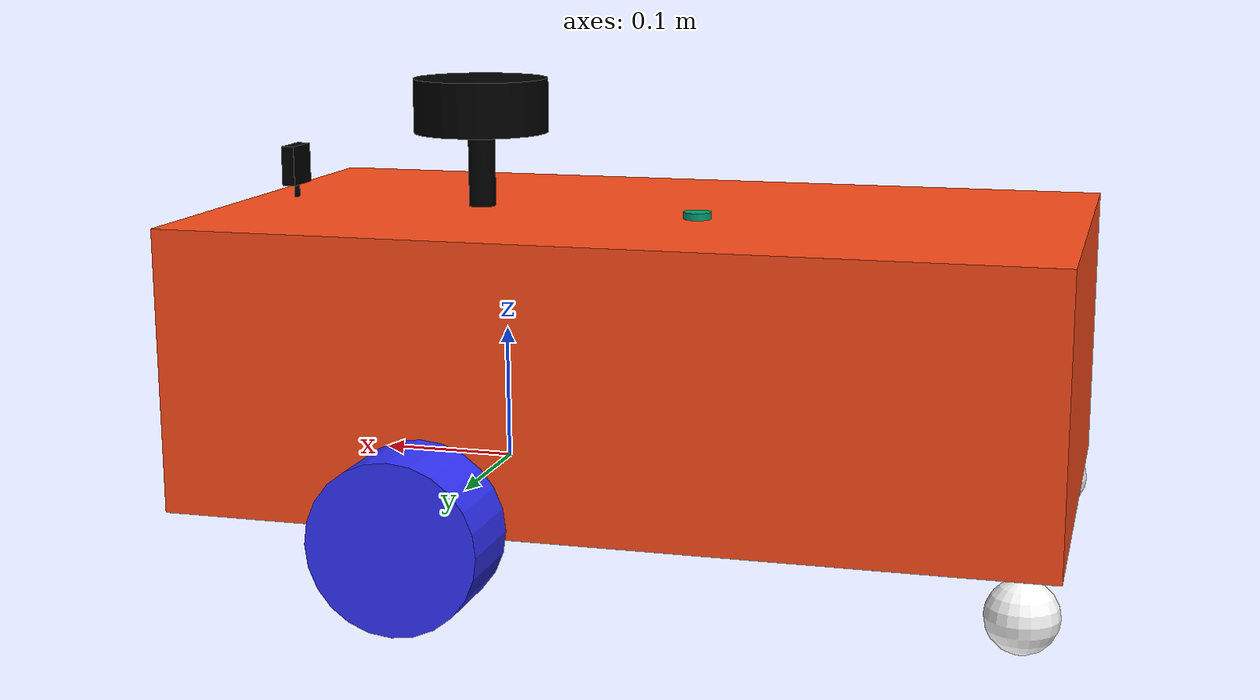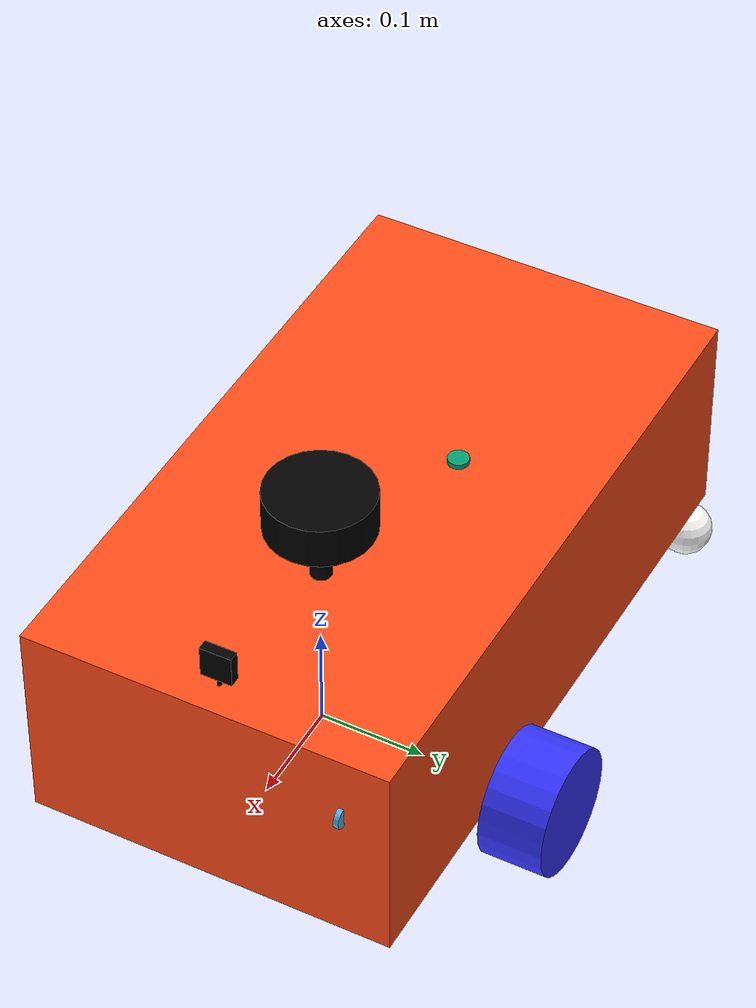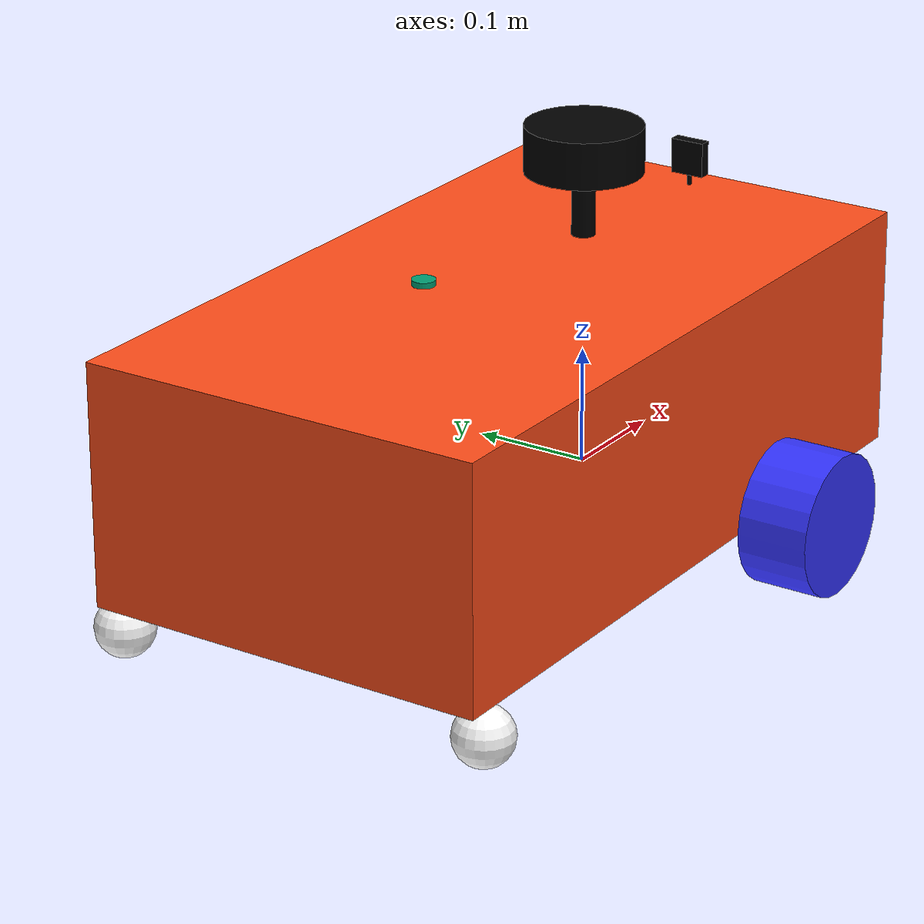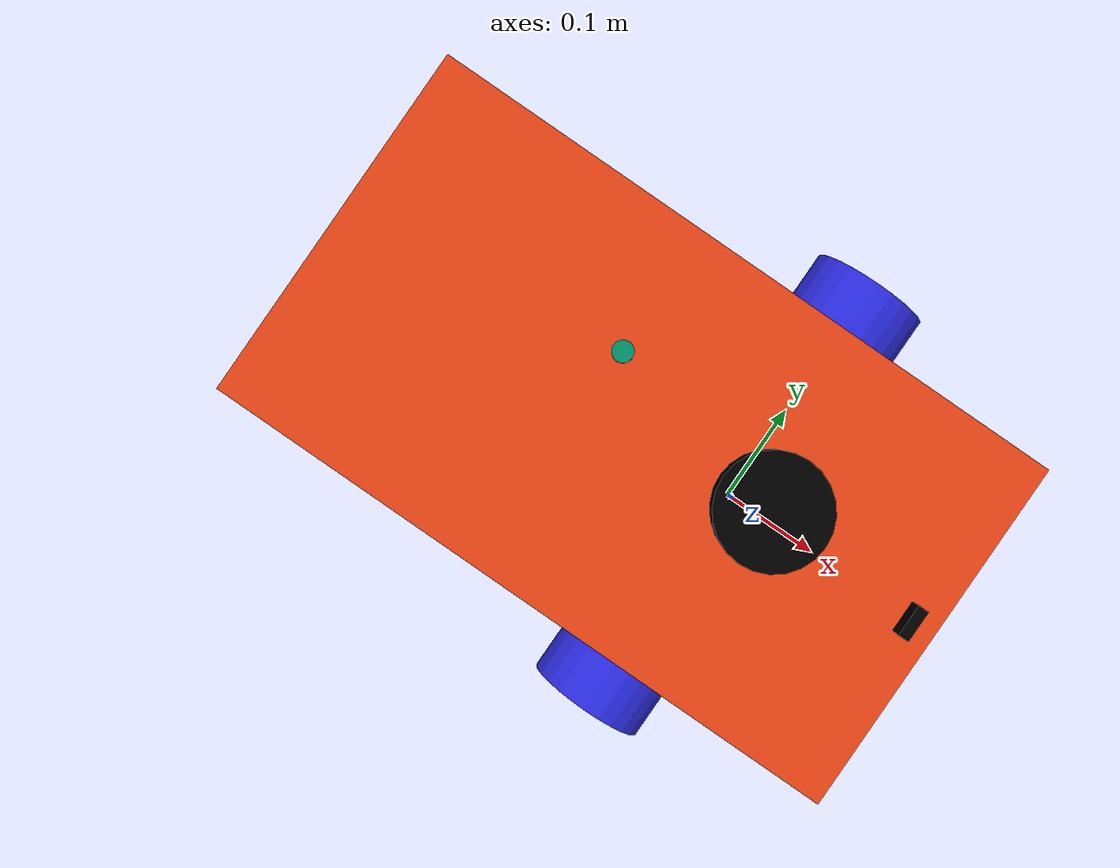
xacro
<?xml version="1.0"?>
<robot xmlns:xacro="http://www.ros.org/wiki/xacro"  name="robot">

    <xacro:arg name="use_ros2_control" default="true"/>
    <xacro:arg name="sim_mode" default="false"/>

    <xacro:include filename="robot_core.xacro" />

    <xacro:if value="$(arg use_ros2_control)">
        <xacro:include filename="ros2_control.xacro" />
    </xacro:if>
    <xacro:unless value="$(arg use_ros2_control)">
        <xacro:include filename="gazebo_control.xacro" />
    </xacro:unless>

    <xacro:include filename="lidar.xacro" />
    <xacro:include filename="camera.xacro" />

</robot>

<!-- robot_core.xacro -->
<robot xmlns:xacro="http://www.ros.org/wiki/xacro" >

    <xacro:include filename="inertial_macros.xacro"/>

    <xacro:property name="chassis_length" value="0.63"/>
    <xacro:property name="chassis_width" value="0.35"/>
    <xacro:property name="chassis_height" value="0.205"/>
    <xacro:property name="chassis_mass" value="4.75"/>
    <xacro:property name="wheel_radius" value="0.06"/>
    <xacro:property name="wheel_thickness" value="0.061"/>
    <xacro:property name="wheel_mass" value="0.160"/>
    <xacro:property name="wheel_offset_x" value="0.43"/>
    <xacro:property name="wheel_offset_y" value="0.185"/>
    <xacro:property name="wheel_offset_z" value="0.01"/>
    <xacro:property name="caster_wheel_radius" value="0.025"/>
    <xacro:property name="caster_wheel_mass" value="0.01"/>
    <xacro:property name="caster_wheel_offset_x" value="0.025"/>
    <xacro:property name="caster_wheel_offset_y" value="0.168"/>
    <xacro:property name="caster_wheel_offset_z" value="${wheel_offset_z - wheel_radius + caster_wheel_radius}"/>

    <material name="white">
        <color rgba="1 1 1 1" />
    </material>

    <material name="orange">
        <color rgba="1 0.3 0.1 1"/>
    </material>

    <material name="blue">
        <color rgba="0.2 0.2 1 1"/>
    </material>

    <material name="black">
        <color rgba="0 0 0 1"/>
    </material>

    <material name="red">
        <color rgba="1 0 0 1"/>
    </material>

    <!-- BASE LINK -->

    <link name="base_link">

    </link>

    <!-- BASE_FOOTPRINT LINK -->

    <joint name="base_footprint_joint" type="fixed">
        <parent link="base_link"/>
        <child link="base_footprint"/>
        <origin xyz="0 0 0" rpy="0 0 0"/>
    </joint>

    <link name="base_footprint">
    </link>

    <!-- CHASSIS LINK -->

    <joint name="chassis_joint" type="fixed">
        <parent link="base_link"/>
        <child link="chassis"/>
        <origin xyz="${-wheel_offset_x} 0 ${-wheel_offset_z}"/>
    </joint>

    <link name="chassis">
        <visual>
            <origin xyz="${chassis_length/2} 0 ${chassis_height/2}"/>
            <geometry>
                <box size="${chassis_length} ${chassis_width} ${chassis_height}"/>
            </geometry>
            <material name="orange"/>
        </visual>
        <collision>
            <origin xyz="${chassis_length/2} 0 ${chassis_height/2}"/>
            <geometry>
                <box size="${chassis_length} ${chassis_width} ${chassis_height}"/>
            </geometry>
        </collision>
        <xacro:inertial_box mass="0.5" x="${chassis_length}" y="${chassis_width}" z="${chassis_height}">
            <origin xyz="${chassis_length/2} 0 ${chassis_height/2}" rpy="0 0 0"/>
        </xacro:inertial_box>
    </link>

    <gazebo reference="chassis">
        <material>Gazebo/Orange</material>
    </gazebo>

    <!-- LEFT WHEEL LINK -->

    <joint name="left_wheel_joint" type="continuous">
        <parent link="base_link"/>
        <child link="left_wheel"/>
        <origin xyz="0 ${wheel_offset_y + wheel_thickness/2} 0" rpy="-${pi/2} 0 0" />
        <axis xyz="0 0 1"/>
    </joint>

    <link name="left_wheel">
        <visual>
            <geometry>
                <cylinder radius="${wheel_radius}" length="${wheel_thickness}"/>
            </geometry>
            <material name="blue"/>
        </visual>
        <collision>
            <geometry>
                <sphere radius="${wheel_radius}"/>
            </geometry>
        </collision>
        <xacro:inertial_cylinder mass="${wheel_mass}" length="${wheel_thickness}" radius="${wheel_radius}">
            <origin xyz="0 0 0" rpy="0 0 0"/>
        </xacro:inertial_cylinder>
    </link>

    <gazebo reference="left_wheel">
        <material>Gazebo/Blue</material>
    </gazebo>

    <!-- RIGHT WHEEL LINK -->

    <joint name="right_wheel_joint" type="continuous">
        <parent link="base_link"/>
        <child link="right_wheel"/>
        <origin xyz="0 ${-(wheel_offset_y + wheel_thickness/2)} 0" rpy="${pi/2} 0 0" />
        <axis xyz="0 0 -1"/>
    </joint>

    <link name="right_wheel">
        <visual>
            <geometry>
                <cylinder radius="${wheel_radius}" length="${wheel_thickness}"/>
            </geometry>
            <material name="blue"/>
        </visual>
        <collision>
            <geometry>
                <sphere radius="${wheel_radius}"/>
            </geometry>
        </collision>
        <xacro:inertial_cylinder mass="${wheel_mass}" length="${wheel_thickness}" radius="${wheel_radius}">
            <origin xyz="0 0 0" rpy="0 0 0"/>
        </xacro:inertial_cylinder>
    </link>

    <gazebo reference="right_wheel">
        <material>Gazebo/Blue</material>
    </gazebo>

    <!--RIGHT CASTER WHEEL LINK -->

    <joint name="right_caster_wheel_joint" type="fixed">
        <parent link="chassis"/>
        <child link="right_caster_wheel"/>
        <origin xyz="${caster_wheel_offset_x} ${-caster_wheel_offset_y} ${caster_wheel_offset_z}"/>
    </joint>

    <link name="right_caster_wheel">
        <visual>
            <geometry>
                <sphere radius="${caster_wheel_radius}"/>
            </geometry>
            <material name="white"/>
        </visual>
        <collision>
            <geometry>
                <sphere radius="${caster_wheel_radius}"/>
            </geometry>
        </collision>
        <xacro:inertial_sphere mass="${caster_wheel_mass}" radius="${caster_wheel_radius}">
            <origin xyz="0 0 0" rpy="0 0 0"/>
        </xacro:inertial_sphere>
    </link>

    <!--LEFT CASTER WHEEL LINK -->

    <joint name="left_caster_wheel_joint" type="fixed">
        <parent link="chassis"/>
        <child link="left_caster_wheel"/>
        <origin xyz="${caster_wheel_offset_x} ${caster_wheel_offset_y} ${caster_wheel_offset_z}"/>
    </joint>

    <link name="left_caster_wheel">
        <visual>
            <geometry>
                <sphere radius="${caster_wheel_radius}"/>
            </geometry>
            <material name="white"/>
        </visual>
        <collision>
            <geometry>
                <sphere radius="${caster_wheel_radius}"/>
            </geometry>
        </collision>
        <xacro:inertial_sphere mass="${caster_wheel_mass}" radius="${caster_wheel_radius}">
            <origin xyz="0 0 0" rpy="0 0 0"/>
        </xacro:inertial_sphere>
    </link>

    <!-- DOOR LINK -->

    <joint name="door_joint" type="continuous">
        <origin xyz="-0.20 0.13 0.13" rpy="1.57 0 0"/>
        <parent link="base_link"/>
        <child link="door_servo_frame"/>
    </joint>

    <link name="door_servo_frame">
        <visual>
            <geometry>
                <cylinder radius="0.01" length="0.005"/>
            </geometry>
        </visual>
        <collision>
            <geometry>
                <sphere radius="0.051"/>
            </geometry>
        </collision>
        <inertial>
            <mass value="0.04021467988426049"/>
            <inertia ixx="4e-05" iyy="7e-05" izz="4e-05" ixy="-0.0" iyz="0.0" ixz="0.0"/>
        </inertial>
    </link>

    <!-- RAMP LINK -->

    <joint name="ramp_joint" type="continuous">
        <origin xyz="-0.40 0.13 0.13" rpy="1.57 0 0"/>
        <parent link="base_link"/>
        <child link="ramp_servo_frame"/>
    </joint>

    <link name="ramp_servo_frame">
        <visual>
            <geometry>
                <cylinder radius="0.01" length="0.005"/>
            </geometry>
        </visual>
        <collision>
            <geometry>
                <sphere radius="0.051"/>
            </geometry>
        </collision>
        <inertial>
            <mass value="0.04021467988426049"/>
            <inertia ixx="4e-05" iyy="7e-05" izz="4e-05" ixy="-0.0" iyz="0.0" ixz="0.0"/>
        </inertial>
    </link>

    <!-- COLLECTOR LINK -->

    <joint name="collector_joint" type="continuous">
        <origin xyz="0.20 0.13 0.13" rpy="1.57 0 0"/>
        <parent link="base_link"/>
        <child link="collector_servo_frame"/>
    </joint>

    <link name="collector_servo_frame">
        <visual>
            <geometry>
                <cylinder radius="0.01" length="0.005"/>
            </geometry>
        </visual>
        <collision>
            <geometry>
                <sphere radius="0.051"/>
            </geometry>
        </collision>
        <inertial>
            <mass value="0.04021467988426049"/>
            <inertia ixx="4e-05" iyy="7e-05" izz="4e-05" ixy="-0.0" iyz="0.0" ixz="0.0"/>
        </inertial>
    </link>

    <!-- IMU LINK -->

    <joint name="imu_joint" type="fixed">
        <origin xyz="-0.16 0.05 0.20" rpy="0 0 0"/>
        <parent link="base_link"/>
        <child link="imu_link"/>
    </joint>

    <link name="imu_link">
        <visual>
            <geometry>
                <cylinder radius="0.01" length="0.005"/>
            </geometry>
        </visual>
        <collision>
            <geometry>
                <sphere radius="0.051"/>
            </geometry>
        </collision>
        <inertial>
            <mass value="0.04021467988426049"/>
            <inertia ixx="4e-05" iyy="7e-05" izz="4e-05" ixy="-0.0" iyz="0.0" ixz="0.0"/>
        </inertial>
    </link>

</robot>

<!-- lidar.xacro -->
<robot xmlns:xacro="http://www.ros.org/wiki/xacro" >

    <joint name="laser_joint" type="fixed">
        <parent link="chassis"/>
        <child link="laser_frame"/>
        <origin xyz="0.445 0.01 0.28" rpy="0 0 0"/>
    </joint>

    <link name="laser_frame">
        <visual>
            <geometry>
                <cylinder radius="0.05" length="0.04"/>
            </geometry>
            <material name="black"/>
        </visual>
        <visual>
            <origin xyz="0 0 -0.05"/>
            <geometry>
                <cylinder radius="0.01" length="0.1"/>
            </geometry>
            <material name="black"/>
        </visual>
        <collision>
            <geometry>
                <cylinder radius="0.05" length="0.04"/>
            </geometry>
        </collision>
        <xacro:inertial_cylinder mass="0.1" length="0.04" radius="0.05">
            <origin xyz="0 0 0" rpy="0 0 0"/>
        </xacro:inertial_cylinder>
    </link>

</robot>

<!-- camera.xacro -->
<robot xmlns:xacro="http://www.ros.org/wiki/xacro" >

    <joint name="camera_joint" type="fixed">
        <parent link="chassis"/>
        <child link="camera_link"/>
        <origin xyz="0.6 0 0.23" rpy="0 0 0"/>
    </joint>

    <link name="camera_link">
        <visual>
            <geometry>
                <box size="0.010 0.03 0.03"/>
            </geometry>
            <material name="black"/>
        </visual>
        <visual>
            <origin xyz="0 0 -0.05"/>
            <geometry>
                <cylinder radius="0.002" length="0.1"/>
            </geometry>
            <material name="black"/>
        </visual>
    </link>

    <joint name="camera_optical_joint" type="fixed">
        <parent link="camera_link"/>
        <child link="camera_link_optical"/>
        <origin xyz="0 0 0" rpy="${-pi/2} 0 ${-pi/2}"/>
    </joint>

    <link name="camera_link_optical"></link>

</robot>
